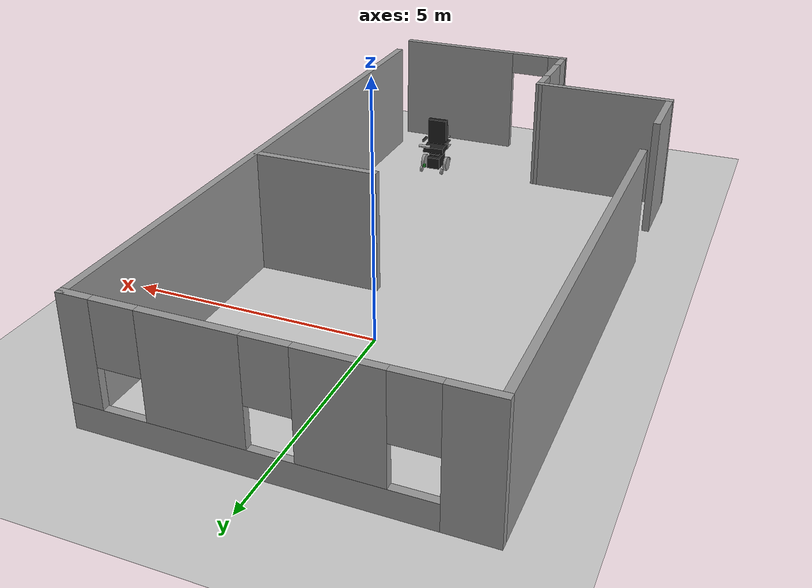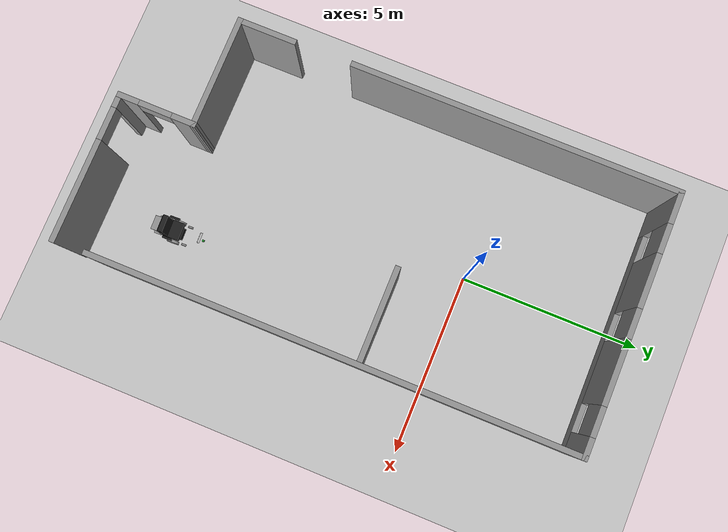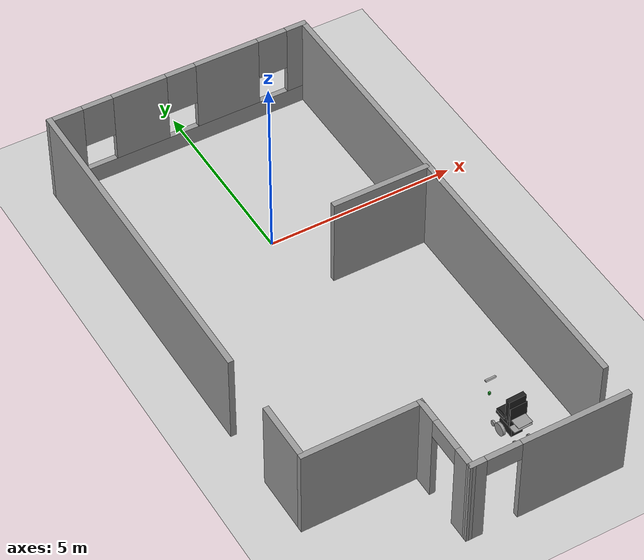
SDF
<sdf version="1.7">
 <world name="default">
  <model name="ground_plane">
   <static>1</static>
   <link name="link">
    <collision name="collision">
     <geometry><plane><normal>0 0 1</normal><size>100 100</size></plane></geometry>
     <surface>
      <contact><collide_bitmask>65535</collide_bitmask></contact>
      <friction><ode><mu>100</mu><mu2>50</mu2></ode></friction>
     </surface>
    </collision>
    <visual name="visual">
     <cast_shadows>0</cast_shadows>
     <geometry><plane><normal>0 0 1</normal><size>100 100</size></plane></geometry>
     <material>
      <script><uri>file://media/materials/scripts/gazebo.material</uri><name>Gazebo/Grey</name></script>
     </material>
    </visual>
   </link>
  </model>
  <model name="bochum_bkp">
   <pose>-0.20956 -2.88416 0 0 -0 0</pose>
   <link name="Wall_11">
    <collision name="Wall_11_Collision">
     <geometry><box><size>3.11 0.15 2.5</size></box></geometry>
     <pose>0 0 1.25 0 -0 0</pose>
    </collision>
    <visual name="Wall_11_Visual">
     <pose>0 0 1.25 0 -0 0</pose>
     <geometry><box><size>3.11 0.15 2.5</size></box></geometry>
     <material>
      <script><uri>file://media/materials/scripts/gazebo.material</uri><name>Gazebo/Grey</name></script>
      <ambient>1 1 1 1</ambient>
     </material>
     <meta><layer>0</layer></meta>
    </visual>
    <pose>-1.98935 -4.9673 0 0 -0 0</pose>
   </link>
   <link name="Wall_12">
    <pose>-0.512396 -5.98357 0 0 -0 -1.5738</pose>
    <visual name="Wall_12_Visual_0">
     <pose>-0.753913 0 1.25 0 -0 0</pose>
     <geometry><box><size>0.674769 0.15 2.5</size></box></geometry>
     <material>
      <script><uri>file://media/materials/scripts/gazebo.material</uri><name>Gazebo/Grey</name></script>
      <ambient>1 1 1 1</ambient>
     </material>
     <meta><layer>0</layer></meta>
    </visual>
    <collision name="Wall_12_Collision_0">
     <geometry><box><size>0.674769 0.15 2.5</size></box></geometry>
     <pose>-0.753913 0 1.25 0 -0 0</pose>
    </collision>
    <visual name="Wall_12_Visual_1">
     <pose>0.787384 0 1.25 0 -0 0</pose>
     <geometry><box><size>0.607826 0.15 2.5</size></box></geometry>
     <material>
      <script><uri>file://media/materials/scripts/gazebo.material</uri><name>Gazebo/Grey</name></script>
      <ambient>1 1 1 1</ambient>
     </material>
     <meta><layer>0</layer></meta>
    </visual>
    <collision name="Wall_12_Collision_1">
     <geometry><box><size>0.607826 0.15 2.5</size></box></geometry>
     <pose>0.787384 0 1.25 0 -0 0</pose>
    </collision>
    <visual name="Wall_12_Visual_2">
     <pose>0.033471 0 2.25 0 -0 0</pose>
     <geometry><box><size>0.9 0.15 0.5</size></box></geometry>
     <material>
      <script><uri>file://media/materials/scripts/gazebo.material</uri><name>Gazebo/Grey</name></script>
      <ambient>1 1 1 1</ambient>
     </material>
     <meta><layer>0</layer></meta>
    </visual>
    <collision name="Wall_12_Collision_2">
     <geometry><box><size>0.9 0.15 0.5</size></box></geometry>
     <pose>0.033471 0 2.25 0 -0 0</pose>
    </collision>
   </link>
   <link name="Wall_14">
    <collision name="Wall_14_Collision">
     <geometry><box><size>8.97232 0.15 2.5</size></box></geometry>
     <pose>0 0 1.25 0 -0 0</pose>
    </collision>
    <visual name="Wall_14_Visual">
     <pose>0 0 1.25 0 -0 0</pose>
     <geometry><box><size>8.97232 0.15 2.5</size></box></geometry>
     <material>
      <script><uri>file://media/materials/scripts/gazebo.material</uri><name>Gazebo/Grey</name></script>
      <ambient>1 1 1 1</ambient>
     </material>
     <meta><layer>0</layer></meta>
    </visual>
    <pose>-3.485 2.58893 0 0 -0 -1.5708</pose>
   </link>
   <link name="Wall_17">
    <collision name="Wall_17_Collision">
     <geometry><box><size>1.5 0.15 2.5</size></box></geometry>
     <pose>0 0 1.25 0 -0 0</pose>
    </collision>
    <visual name="Wall_17_Visual">
     <pose>0 0 1.25 0 -0 0</pose>
     <geometry><box><size>1.5 0.15 2.5</size></box></geometry>
     <material>
      <script><uri>file://media/materials/scripts/gazebo.material</uri><name>Gazebo/Grey</name></script>
      <ambient>1 1 1 1</ambient>
     </material>
     <meta><layer>0</layer></meta>
    </visual>
    <pose>-3.46761 -4.15593 0 0 -0 -1.5708</pose>
   </link>
   <link name="Wall_21">
    <collision name="Wall_21_Collision">
     <geometry><box><size>2.6 0.15 2.5</size></box></geometry>
     <pose>0 0 1.25 0 -0 0</pose>
    </collision>
    <visual name="Wall_21_Visual">
     <pose>0 0 1.25 0 -0 0</pose>
     <geometry><box><size>2.6 0.15 2.5</size></box></geometry>
     <material>
      <script><uri>file://media/materials/scripts/gazebo.material</uri><name>Gazebo/Grey</name></script>
      <ambient>1 1 1 1</ambient>
     </material>
     <meta><layer>0</layer></meta>
    </visual>
    <pose>2.18488 1.15912 0 0 -0 0</pose>
   </link>
   <link name="Wall_3">
    <pose>-0 7.00009 0 0 -0 0</pose>
    <visual name="Wall_3_Visual_0">
     <pose>-3.09795 0 1.25 0 -0 0</pose>
     <geometry><box><size>0.9241 0.15 2.5</size></box></geometry>
     <material>
      <script><uri>file://media/materials/scripts/gazebo.material</uri><name>Gazebo/Grey</name></script>
      <ambient>1 1 1 1</ambient>
     </material>
     <meta><layer>0</layer></meta>
    </visual>
    <collision name="Wall_3_Collision_0">
     <geometry><box><size>0.9241 0.15 2.5</size></box></geometry>
     <pose>-3.09795 0 1.25 0 -0 0</pose>
    </collision>
    <visual name="Wall_3_Visual_1">
     <pose>0.46205 0 0.25 0 -0 0</pose>
     <geometry><box><size>6.1959 0.15 0.5</size></box></geometry>
     <material>
      <script><uri>file://media/materials/scripts/gazebo.material</uri><name>Gazebo/Grey</name></script>
      <ambient>1 1 1 1</ambient>
     </material>
     <meta><layer>0</layer></meta>
    </visual>
    <collision name="Wall_3_Collision_1">
     <geometry><box><size>6.1959 0.15 0.5</size></box></geometry>
     <pose>0.46205 0 0.25 0 -0 0</pose>
    </collision>
    <visual name="Wall_3_Visual_2">
     <pose>-1.10522 0 1.5 0 -0 0</pose>
     <geometry><box><size>1.46137 0.15 2</size></box></geometry>
     <material>
      <script><uri>file://media/materials/scripts/gazebo.material</uri><name>Gazebo/Grey</name></script>
      <ambient>1 1 1 1</ambient>
     </material>
     <meta><layer>0</layer></meta>
    </visual>
    <collision name="Wall_3_Collision_2">
     <geometry><box><size>1.46137 0.15 2</size></box></geometry>
     <pose>-1.10522 0 1.5 0 -0 0</pose>
    </collision>
    <visual name="Wall_3_Visual_3">
     <pose>1.29748 0 1.5 0 -0 0</pose>
     <geometry><box><size>1.74404 0.15 2</size></box></geometry>
     <material>
      <script><uri>file://media/materials/scripts/gazebo.material</uri><name>Gazebo/Grey</name></script>
      <ambient>1 1 1 1</ambient>
     </material>
     <meta><layer>0</layer></meta>
    </visual>
    <collision name="Wall_3_Collision_3">
     <geometry><box><size>1.74404 0.15 2</size></box></geometry>
     <pose>1.29748 0 1.5 0 -0 0</pose>
    </collision>
    <visual name="Wall_3_Visual_4">
     <pose>3.26475 0 1.5 0 -0 0</pose>
     <geometry><box><size>0.590498 0.15 2</size></box></geometry>
     <material>
      <script><uri>file://media/materials/scripts/gazebo.material</uri><name>Gazebo/Grey</name></script>
      <ambient>1 1 1 1</ambient>
     </material>
     <meta><layer>0</layer></meta>
    </visual>
    <collision name="Wall_3_Collision_4">
     <geometry><box><size>0.590498 0.15 2</size></box></geometry>
     <pose>3.26475 0 1.5 0 -0 0</pose>
    </collision>
    <visual name="Wall_3_Visual_5">
     <pose>-2.2359 0 1.9 0 -0 0</pose>
     <geometry><box><size>0.8 0.15 1.2</size></box></geometry>
     <material>
      <script><uri>file://media/materials/scripts/gazebo.material</uri><name>Gazebo/Grey</name></script>
      <ambient>1 1 1 1</ambient>
     </material>
     <meta><layer>0</layer></meta>
    </visual>
    <collision name="Wall_3_Collision_5">
     <geometry><box><size>0.8 0.15 1.2</size></box></geometry>
     <pose>-2.2359 0 1.9 0 -0 0</pose>
    </collision>
    <visual name="Wall_3_Visual_6">
     <pose>0.025466 0 1.9 0 -0 0</pose>
     <geometry><box><size>0.8 0.15 1.2</size></box></geometry>
     <material>
      <script><uri>file://media/materials/scripts/gazebo.material</uri><name>Gazebo/Grey</name></script>
      <ambient>1 1 1 1</ambient>
     </material>
     <meta><layer>0</layer></meta>
    </visual>
    <collision name="Wall_3_Collision_6">
     <geometry><box><size>0.8 0.15 1.2</size></box></geometry>
     <pose>0.025466 0 1.9 0 -0 0</pose>
    </collision>
    <visual name="Wall_3_Visual_7">
     <pose>2.5695 0 1.9 0 -0 0</pose>
     <geometry><box><size>0.8 0.15 1.2</size></box></geometry>
     <material>
      <script><uri>file://media/materials/scripts/gazebo.material</uri><name>Gazebo/Grey</name></script>
      <ambient>1 1 1 1</ambient>
     </material>
     <meta><layer>0</layer></meta>
    </visual>
    <collision name="Wall_3_Collision_7">
     <geometry><box><size>0.8 0.15 1.2</size></box></geometry>
     <pose>2.5695 0 1.9 0 -0 0</pose>
    </collision>
   </link>
   <link name="Wall_5">
    <collision name="Wall_5_Collision">
     <geometry><box><size>13.25 0.15 2.5</size></box></geometry>
     <pose>0 0 1.25 0 -0 0</pose>
    </collision>
    <visual name="Wall_5_Visual">
     <pose>0 0 1.25 0 -0 0</pose>
     <geometry><box><size>13.25 0.15 2.5</size></box></geometry>
     <material>
      <script><uri>file://media/materials/scripts/gazebo.material</uri><name>Gazebo/Grey</name></script>
      <ambient>1 1 1 1</ambient>
     </material>
     <meta><layer>0</layer></meta>
    </visual>
    <pose>3.485 0.450086 0 0 -0 -1.5708</pose>
   </link>
   <link name="Wall_9">
    <pose>1.48456 -6.99984 0 0 -0 3.14159</pose>
    <visual name="Wall_9_Visual_0">
     <pose>-0.665967 0 1.25 0 -0 0</pose>
     <geometry><box><size>2.81807 0.15 2.5</size></box></geometry>
     <material>
      <script><uri>file://media/materials/scripts/gazebo.material</uri><name>Gazebo/Grey</name></script>
      <ambient>1 1 1 1</ambient>
     </material>
     <meta><layer>0</layer></meta>
    </visual>
    <collision name="Wall_9_Collision_0">
     <geometry><box><size>2.81807 0.15 2.5</size></box></geometry>
     <pose>-0.665967 0 1.25 0 -0 0</pose>
    </collision>
    <visual name="Wall_9_Visual_1">
     <pose>1.85903 0 1.25 0 -0 0</pose>
     <geometry><box><size>0.431933 0.15 2.5</size></box></geometry>
     <material>
      <script><uri>file://media/materials/scripts/gazebo.material</uri><name>Gazebo/Grey</name></script>
      <ambient>1 1 1 1</ambient>
     </material>
     <meta><layer>0</layer></meta>
    </visual>
    <collision name="Wall_9_Collision_1">
     <geometry><box><size>0.431933 0.15 2.5</size></box></geometry>
     <pose>1.85903 0 1.25 0 -0 0</pose>
    </collision>
    <visual name="Wall_9_Visual_2">
     <pose>1.19307 0 2.25 0 -0 0</pose>
     <geometry><box><size>0.9 0.15 0.5</size></box></geometry>
     <material>
      <script><uri>file://media/materials/scripts/gazebo.material</uri><name>Gazebo/Grey</name></script>
      <ambient>1 1 1 1</ambient>
     </material>
     <meta><layer>0</layer></meta>
    </visual>
    <collision name="Wall_9_Collision_2">
     <geometry><box><size>0.9 0.15 0.5</size></box></geometry>
     <pose>1.19307 0 2.25 0 -0 0</pose>
    </collision>
   </link>
   <static>1</static>
  </model>
  <model name="wheelchair">
   <link name="base_link">
    <inertial>
     <mass>100</mass>
     <inertia><ixx>1</ixx><ixy>0</ixy><ixz>0</ixz><iyy>1</iyy><iyz>0</iyz><izz>1</izz></inertia>
    </inertial>
    <collision name="base_link_collision"><geometry><box><size>0.462 0.31 0.27</size></box></geometry></collision>
    <visual name="base_link_visual">
     <geometry><box><size>0.462 0.31 0.27</size></box></geometry>
     <material>
      <script><name>Gazebo/Black</name><uri>file://media/materials/scripts/gazebo.material</uri></script>
     </material>
    </visual>
   </link>
   <joint name="backwheel0_joint" type="revolute">
    <pose relative_to="base_link">-0.436 -0.187 -0.138 0 -0 0</pose>
    <parent>base_link</parent>
    <child>backwheel0_link</child>
    <axis>
     <xyz>0 1 0</xyz>
     <limit><lower>-1e+16</lower><upper>1e+16</upper></limit>
     <dynamics><spring_reference>0</spring_reference><spring_stiffness>0</spring_stiffness></dynamics>
    </axis>
   </joint>
   <link name="backwheel0_link">
    <pose relative_to="backwheel0_joint">0 0 0 0 -0 0</pose>
    <inertial>
     <mass>5</mass>
     <inertia><ixx>1</ixx><ixy>0</ixy><ixz>0</ixz><iyy>1</iyy><iyz>0</iyz><izz>1</izz></inertia>
    </inertial>
    <collision name="backwheel0_link_collision">
     <pose>0 0 0 1.57079 1.57079 3.14159</pose>
     <geometry><cylinder><length>0.046</length><radius>0.07</radius></cylinder></geometry>
    </collision>
    <visual name="backwheel0_link_visual">
     <pose>0 0 0 1.57079 1.57079 3.14159</pose>
     <geometry><cylinder><length>0.046</length><radius>0.07</radius></cylinder></geometry>
     <material>
      <script><name>Gazebo/Grey</name><uri>file://media/materials/scripts/gazebo.material</uri></script>
     </material>
    </visual>
   </link>
   <joint name="backwheel1_joint" type="revolute">
    <pose relative_to="base_link">-0.436 0.187 -0.138 0 -0 0</pose>
    <parent>base_link</parent>
    <child>backwheel1_link</child>
    <axis>
     <xyz>0 1 0</xyz>
     <limit><lower>-1e+16</lower><upper>1e+16</upper></limit>
     <dynamics><spring_reference>0</spring_reference><spring_stiffness>0</spring_stiffness></dynamics>
    </axis>
   </joint>
   <link name="backwheel1_link">
    <pose relative_to="backwheel1_joint">0 0 0 0 -0 0</pose>
    <inertial>
     <mass>5</mass>
     <inertia><ixx>1</ixx><ixy>0</ixy><ixz>0</ixz><iyy>1</iyy><iyz>0</iyz><izz>1</izz></inertia>
    </inertial>
    <collision name="backwheel1_link_collision">
     <pose>0 0 0 1.57079 1.57079 3.14159</pose>
     <geometry><cylinder><length>0.046</length><radius>0.07</radius></cylinder></geometry>
    </collision>
    <visual name="backwheel1_link_visual">
     <pose>0 0 0 1.57079 1.57079 3.14159</pose>
     <geometry><cylinder><length>0.046</length><radius>0.07</radius></cylinder></geometry>
     <material>
      <script><name>Gazebo/Grey</name><uri>file://media/materials/scripts/gazebo.material</uri></script>
     </material>
    </visual>
   </link>
   <joint name="frontwheel0_joint" type="revolute">
    <pose relative_to="base_link">0.323 -0.257 -0.138 0 -0 0</pose>
    <parent>base_link</parent>
    <child>frontwheel0_link</child>
    <axis>
     <xyz>0 1 0</xyz>
     <limit><lower>-1e+16</lower><upper>1e+16</upper></limit>
     <dynamics><spring_reference>0</spring_reference><spring_stiffness>0</spring_stiffness></dynamics>
    </axis>
   </joint>
   <link name="frontwheel0_link">
    <pose relative_to="frontwheel0_joint">0 0 0 0 -0 0</pose>
    <inertial>
     <mass>5</mass>
     <inertia><ixx>1</ixx><ixy>0</ixy><ixz>0</ixz><iyy>1</iyy><iyz>0</iyz><izz>1</izz></inertia>
    </inertial>
    <collision name="frontwheel0_link_collision">
     <pose>0 0 0 1.57079 1.57079 3.14159</pose>
     <geometry><cylinder><length>0.046</length><radius>0.07</radius></cylinder></geometry>
    </collision>
    <visual name="frontwheel0_link_visual">
     <pose>0 0 0 1.57079 1.57079 3.14159</pose>
     <geometry><cylinder><length>0.046</length><radius>0.07</radius></cylinder></geometry>
     <material>
      <script><name>Gazebo/Grey</name><uri>file://media/materials/scripts/gazebo.material</uri></script>
     </material>
    </visual>
   </link>
   <joint name="frontwheel1_joint" type="revolute">
    <pose relative_to="base_link">0.323 0.257 -0.138 0 -0 0</pose>
    <parent>base_link</parent>
    <child>frontwheel1_link</child>
    <axis>
     <xyz>0 1 0</xyz>
     <limit><lower>-1e+16</lower><upper>1e+16</upper></limit>
     <dynamics><spring_reference>0</spring_reference><spring_stiffness>0</spring_stiffness></dynamics>
    </axis>
   </joint>
   <link name="frontwheel1_link">
    <pose relative_to="frontwheel1_joint">0 0 0 0 -0 0</pose>
    <inertial>
     <mass>5</mass>
     <inertia><ixx>1</ixx><ixy>0</ixy><ixz>0</ixz><iyy>1</iyy><iyz>0</iyz><izz>1</izz></inertia>
    </inertial>
    <collision name="frontwheel1_link_collision">
     <pose>0 0 0 1.57079 1.57079 3.14159</pose>
     <geometry><cylinder><length>0.046</length><radius>0.07</radius></cylinder></geometry>
    </collision>
    <visual name="frontwheel1_link_visual">
     <pose>0 0 0 1.57079 1.57079 3.14159</pose>
     <geometry><cylinder><length>0.046</length><radius>0.07</radius></cylinder></geometry>
     <material>
      <script><name>Gazebo/Grey</name><uri>file://media/materials/scripts/gazebo.material</uri></script>
     </material>
    </visual>
   </link>
   <joint name="upperbase_joint" type="prismatic">
    <pose relative_to="base_link">-0.063 0 0.199 0 -0 0</pose>
    <parent>base_link</parent>
    <child>upperbase_link</child>
    <axis>
     <xyz>0 0 1</xyz>
     <limit><lower>0</lower><upper>0.1</upper><effort>1000</effort><velocity>0.01</velocity></limit>
     <dynamics><spring_reference>0</spring_reference><spring_stiffness>0</spring_stiffness></dynamics>
    </axis>
   </joint>
   <link name="upperbase_link">
    <pose relative_to="upperbase_joint">0 0 0 0 -0 0</pose>
    <inertial>
     <pose>-0.010214 0 0.081371 0 -0 0</pose>
     <mass>70</mass>
     <inertia>
      <ixx>9.52934</ixx>
      <ixy>0</ixy>
      <ixz>0.305082</ixz>
      <iyy>10.8076</iyy>
      <iyz>0</iyz>
      <izz>9.44413</izz>
     </inertia>
    </inertial>
    <collision name="upperbase_link_collision">
     <geometry><box><size>0.491 0.247 0.04</size></box></geometry>
    </collision>
    <collision name="upperbase_link_fixed_joint_lump__armrest_left_link_collision_1">
     <pose>0.068 0.288 0.318 0 -0 0</pose>
     <geometry><box><size>0.278 0.056 0.036</size></box></geometry>
    </collision>
    <collision name="upperbase_link_fixed_joint_lump__armrest_right_link_collision_2">
     <pose>0.068 -0.288 0.318 0 -0 0</pose>
     <geometry><box><size>0.278 0.056 0.036</size></box></geometry>
    </collision>
    <collision name="upperbase_link_fixed_joint_lump__backseat_link_collision_3">
     <pose>-0.047 0 0.502 0 -0 0</pose>
     <geometry><box><size>0.13 0.46 0.64</size></box></geometry>
    </collision>
    <collision name="upperbase_link_fixed_joint_lump__backstructure_link_collision_4">
     <pose>-0.162 0 0.352 0 -0 0</pose>
     <geometry><box><size>0.02 0.46 0.62</size></box></geometry>
    </collision>
    <collision name="upperbase_link_fixed_joint_lump__bottomseat_link_collision_5">
     <pose>0.109 0 0.151 0 -0 0</pose>
     <geometry><box><size>0.44 0.49 0.13</size></box></geometry>
    </collision>
    <collision name="upperbase_link_fixed_joint_lump__camera_link_collision_6">
     <pose>0.93 0 0.5 0 0.349066 0</pose>
     <geometry><box><size>0.061 0.28 0.038</size></box></geometry>
    </collision>
    <collision name="upperbase_link_fixed_joint_lump__hokuyo_link_collision_7">
     <pose>0.93 0 0 0 -0 0</pose>
     <geometry><box><size>0.05 0.05 0.07</size></box></geometry>
    </collision>
    <collision name="upperbase_link_fixed_joint_lump__lowerplatform_link_collision_8">
     <pose>-0.284 0 0.083 0 -0 0</pose>
     <geometry><box><size>0.212 0.491 0.005</size></box></geometry>
    </collision>
    <collision name="upperbase_link_fixed_joint_lump__upperplatform_link_collision_9">
     <pose>-0.307 0 0.268 0 -0 0</pose>
     <geometry><box><size>0.31 0.391 0.01</size></box></geometry>
    </collision>
    <visual name="upperbase_link_visual">
     <geometry><box><size>0.491 0.247 0.04</size></box></geometry>
     <material>
      <script><name>Gazebo/Black</name><uri>file://media/materials/scripts/gazebo.material</uri></script>
     </material>
    </visual>
    <visual name="upperbase_link_fixed_joint_lump__armrest_left_link_visual_1">
     <pose>0.068 0.288 0.318 0 -0 0</pose>
     <geometry><box><size>0.278 0.056 0.036</size></box></geometry>
     <material>
      <script><name>Gazebo/Black</name><uri>file://media/materials/scripts/gazebo.material</uri></script>
     </material>
    </visual>
    <visual name="upperbase_link_fixed_joint_lump__armrest_right_link_visual_2">
     <pose>0.068 -0.288 0.318 0 -0 0</pose>
     <geometry><box><size>0.278 0.056 0.036</size></box></geometry>
     <material>
      <script><name>Gazebo/Black</name><uri>file://media/materials/scripts/gazebo.material</uri></script>
     </material>
    </visual>
    <visual name="upperbase_link_fixed_joint_lump__backseat_link_visual_3">
     <pose>-0.047 0 0.502 0 -0 0</pose>
     <geometry><box><size>0.13 0.46 0.64</size></box></geometry>
     <material>
      <script><name>Gazebo/Black</name><uri>file://media/materials/scripts/gazebo.material</uri></script>
     </material>
    </visual>
    <visual name="upperbase_link_fixed_joint_lump__backstructure_link_visual_4">
     <pose>-0.162 0 0.352 0 -0 0</pose>
     <geometry><box><size>0.02 0.46 0.62</size></box></geometry>
     <material>
      <script><name>Gazebo/Black</name><uri>file://media/materials/scripts/gazebo.material</uri></script>
     </material>
    </visual>
    <visual name="upperbase_link_fixed_joint_lump__bottomseat_link_visual_5">
     <pose>0.109 0 0.151 0 -0 0</pose>
     <geometry><box><size>0.44 0.49 0.13</size></box></geometry>
     <material>
      <script><name>Gazebo/Black</name><uri>file://media/materials/scripts/gazebo.material</uri></script>
     </material>
    </visual>
    <visual name="upperbase_link_fixed_joint_lump__camera_link_visual_6">
     <pose>0.93 0 0.5 0 0.349066 0</pose>
     <geometry><box><size>0.061 0.28 0.038</size></box></geometry>
    </visual>
    <visual name="upperbase_link_fixed_joint_lump__hokuyo_link_visual_7">
     <pose>0.93 0 0 0 -0 0</pose>
     <geometry><box><size>0.05 0.05 0.07</size></box></geometry>
     <material>
      <script><name>Gazebo/Green</name><uri>file://media/materials/scripts/gazebo.material</uri></script>
     </material>
    </visual>
    <visual name="upperbase_link_fixed_joint_lump__lowerplatform_link_visual_8">
     <pose>-0.284 0 0.083 0 -0 0</pose>
     <geometry><box><size>0.212 0.491 0.005</size></box></geometry>
     <material>
      <script><name>Gazebo/Grey</name><uri>file://media/materials/scripts/gazebo.material</uri></script>
     </material>
    </visual>
    <visual name="upperbase_link_fixed_joint_lump__upperplatform_link_visual_9">
     <pose>-0.307 0 0.268 0 -0 0</pose>
     <geometry><box><size>0.31 0.391 0.01</size></box></geometry>
     <material>
      <script><name>Gazebo/Grey</name><uri>file://media/materials/scripts/gazebo.material</uri></script>
     </material>
    </visual>
    <sensor name="head_hokuyo_sensor" type="ray">
     <visualize>1</visualize>
     <update_rate>40</update_rate>
     <ray>
      <scan>
       <horizontal>
        <samples>120</samples>
        <resolution>1</resolution>
        <min_angle>-1.5708</min_angle>
        <max_angle>1.5708</max_angle>
       </horizontal>
       <vertical><samples>1</samples><min_angle>0</min_angle><max_angle>0</max_angle></vertical>
      </scan>
      <range><min>0.1</min><max>4</max><resolution>0.01</resolution></range>
      <noise><type>gaussian</type><mean>0</mean><stddev>0.01</stddev></noise>
     </ray>
     <plugin name="gazebo_ros_head_hokuyo_controller" filename="libgazebo_ros_laser.so">
      <topicName>/hokuyo/scan</topicName>
      <frameName>hokuyo_link</frameName>
      <robotNamespace>/</robotNamespace>
     </plugin>
     <pose>0.93 0 0 0 -0 0</pose>
    </sensor>
   </link>
   <joint name="wheel0_joint" type="revolute">
    <pose relative_to="base_link">0.033 -0.278 -0.041 0 -0 0</pose>
    <parent>base_link</parent>
    <child>wheel0_link</child>
    <axis>
     <xyz>0 1 0</xyz>
     <limit><lower>-1e+16</lower><upper>1e+16</upper></limit>
     <dynamics><spring_reference>0</spring_reference><spring_stiffness>0</spring_stiffness></dynamics>
    </axis>
   </joint>
   <link name="wheel0_link">
    <pose relative_to="wheel0_joint">0 0 0 0 -0 0</pose>
    <inertial>
     <mass>5</mass>
     <inertia><ixx>1</ixx><ixy>0</ixy><ixz>0</ixz><iyy>1</iyy><iyz>0</iyz><izz>1</izz></inertia>
    </inertial>
    <collision name="wheel0_link_collision">
     <pose>0 0 0 1.57079 1.57079 3.14159</pose>
     <geometry><cylinder><length>0.072</length><radius>0.167</radius></cylinder></geometry>
    </collision>
    <visual name="wheel0_link_visual">
     <pose>0 0 0 1.57079 1.57079 3.14159</pose>
     <geometry><cylinder><length>0.072</length><radius>0.167</radius></cylinder></geometry>
     <material>
      <script><name>Gazebo/Grey</name><uri>file://media/materials/scripts/gazebo.material</uri></script>
     </material>
    </visual>
   </link>
   <joint name="wheel1_joint" type="revolute">
    <pose relative_to="base_link">0.033 0.278 -0.041 0 -0 0</pose>
    <parent>base_link</parent>
    <child>wheel1_link</child>
    <axis>
     <xyz>0 1 0</xyz>
     <limit><lower>-1e+16</lower><upper>1e+16</upper></limit>
     <dynamics><spring_reference>0</spring_reference><spring_stiffness>0</spring_stiffness></dynamics>
    </axis>
   </joint>
   <link name="wheel1_link">
    <pose relative_to="wheel1_joint">0 0 0 0 -0 0</pose>
    <inertial>
     <mass>5</mass>
     <inertia><ixx>1</ixx><ixy>0</ixy><ixz>0</ixz><iyy>1</iyy><iyz>0</iyz><izz>1</izz></inertia>
    </inertial>
    <collision name="wheel1_link_collision">
     <pose>0 0 0 1.57079 1.57079 3.14159</pose>
     <geometry><cylinder><length>0.072</length><radius>0.167</radius></cylinder></geometry>
    </collision>
    <visual name="wheel1_link_visual">
     <pose>0 0 0 1.57079 1.57079 3.14159</pose>
     <geometry><cylinder><length>0.072</length><radius>0.167</radius></cylinder></geometry>
     <material>
      <script><name>Gazebo/Grey</name><uri>file://media/materials/scripts/gazebo.material</uri></script>
     </material>
    </visual>
   </link>
   <static>0</static>
   <plugin name="object_controller" filename="libgazebo_ros_planar_move.so">
    <commandTopic>cmd_vel</commandTopic>
    <odometryTopic>odom</odometryTopic>
    <odometryFrame>odom</odometryFrame>
    <odometryRate>20.0</odometryRate>
    <robotBaseFrame>base_link</robotBaseFrame>
    <robotNamespace>/</robotNamespace>
   </plugin>
   <pose>1.77993 -7.787 0.208 1e-06 -0 1.60743</pose>
  </model>
 </world>
</sdf>
